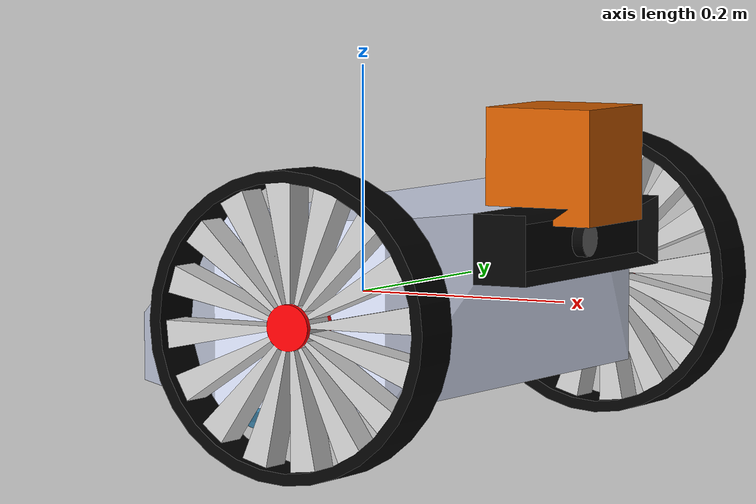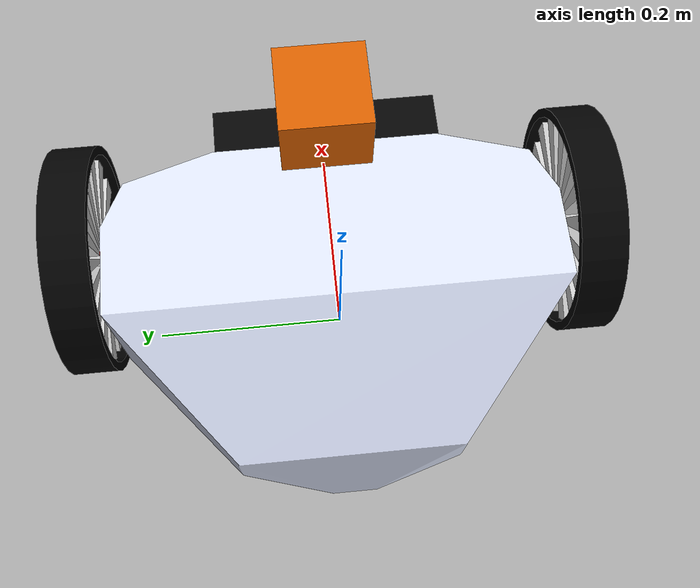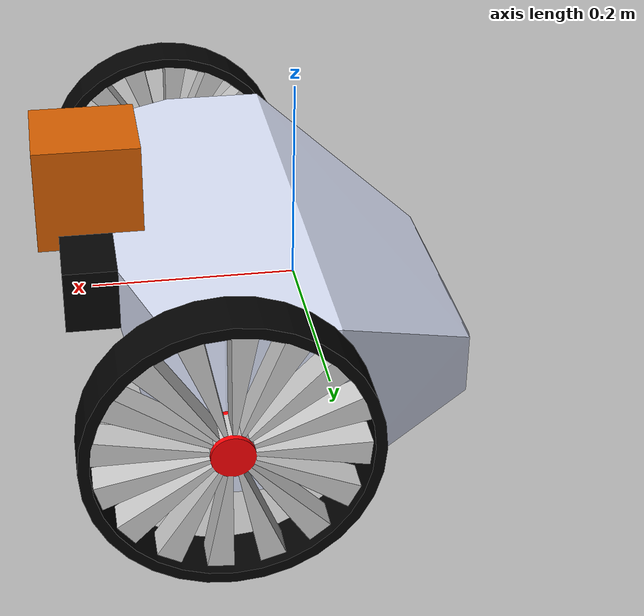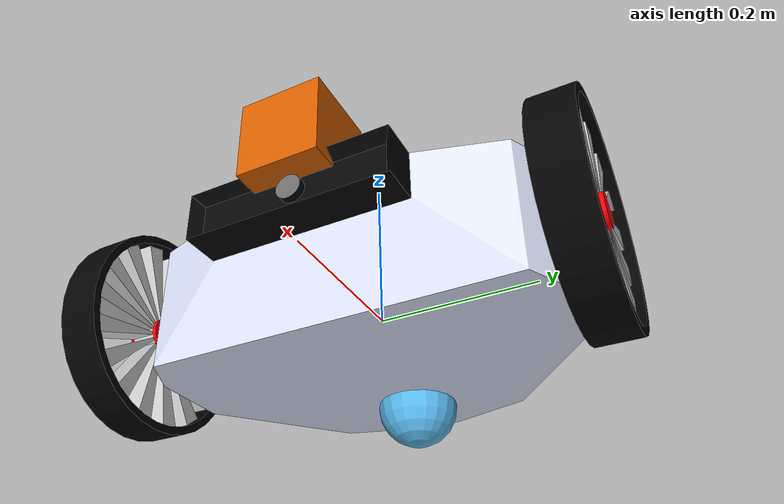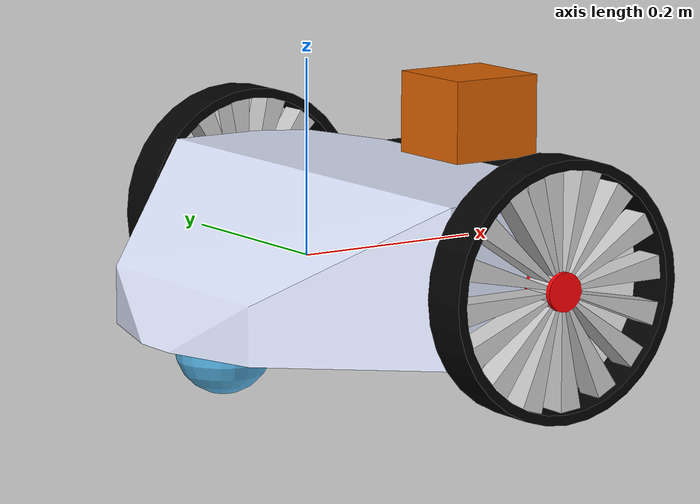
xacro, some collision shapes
<?xml version='1.0'?>

<robot name="my_robot" xmlns:xacro="http://www.ros.org/wiki/xacro">
  <xacro:include filename="$(find my_robot)/urdf/my_robot.gazebo" />
  <link name="robot_footprint"></link>

  <joint name="robot_footprint_joint" type="fixed">
    <origin xyz="0 0 0" rpy="0 0 0" />
    <parent link="robot_footprint"/>
    <child link="chassis" />
  </joint>

  <link name='chassis'>
    <pose>0 0 0 0 0 0</pose>

    <inertial>
      <mass value="5.0"/>
      <origin xyz="0.0 0 0" rpy=" 0 0 0"/>
      <inertia
          ixx="0.1" ixy="0" ixz="0"
          iyy="0.1" iyz="0"
          izz="0.1"
      />
    </inertial>

    <collision name='collision'>
      <origin xyz="0 0 0" rpy=" 0 0 0"/>
      <geometry>
        <box size=".36 .5 .16"/>
      </geometry>
    </collision>

    <visual name='chassis_visual'>
      <origin xyz="0 0 0" rpy=" 0 0 0"/>
      <geometry>
        <mesh filename="package://my_robot/meshes/MattBot.dae" />
      </geometry>
    </visual>

    <collision name='back_caster_collision'>
      <origin xyz="-0.1 0 -0.08" rpy=" 0 0 0"/>
      <geometry>
        <sphere radius="0.05"/>
      </geometry>
    </collision>

    <visual name='back_caster_visual'>
      <origin xyz="-0.1 0 -0.08" rpy=" 0 0 0"/>
      <geometry>
        <sphere radius="0.05"/>
      </geometry>
    </visual>

  </link>

  <link name='left_wheel'>

    <inertial>
      <mass value="2.0"/>
      <origin xyz="0.0 0 0" rpy=" 0 1.5707 1.5707"/>
      <inertia
          ixx="0.1" ixy="0" ixz="0"
          iyy="0.1" iyz="0"
          izz="0.1"
      />
    </inertial>

    <collision name='left_wheel_collision'>
      <origin xyz="0 0 0" rpy="0 1.5707 1.5707"/>
      <geometry>
        <cylinder radius="0.13" length="0.025"/>
      </geometry>
    </collision>

    <visual name='left_wheel_visual'>
      <origin xyz="0 0 0" rpy="0 1.5707 1.5707" />
      <geometry>
        <mesh filename="package://my_robot/meshes/MattWheel.dae" />
      </geometry>
    </visual>
  </link>

  <link name='right_wheel'>
    <inertial>
      <mass value="2.0"/>
      <origin xyz="0.0 0 0" rpy=" 0 1.5707 1.5707"/>
      <inertia
          ixx="0.1" ixy="0" ixz="0"
          iyy="0.1" iyz="0"
          izz="0.1"
      />
    </inertial>

    <collision name='right_wheel_collision'>
      <origin xyz="0 0 0" rpy="0 1.5707 1.5707"/>
      <geometry>
        <cylinder radius="0.13" length="0.025"/>
      </geometry>
    </collision>

    <visual name='right_wheel_visual'>
      <origin xyz="0 0 0" rpy="0 1.5707 1.5707"/>
      <geometry>
        <mesh filename="package://my_robot/meshes/MattWheel.dae" />
      </geometry>
    </visual>
  </link>

  <joint type="continuous" name="left_wheel_hinge">
    <origin xyz="0.1 0.28 0" rpy="0 0 0"/>
    <child link="left_wheel"/>
    <parent link="chassis"/>
    <axis xyz="0 1 0" rpy="0 0 0"/>
    <limit effort="10000" velocity="1000"/>
    <dynamics damping="1.0" friction="1.0"/>
  </joint>

  <joint type="continuous" name="right_wheel_hinge">
    <origin xyz="0.1 -0.28 0" rpy="0 0 0"/>
    <child link="right_wheel"/>
    <parent link="chassis"/>
    <axis xyz="0 1 0" rpy="0 0 0"/>
    <limit effort="10000" velocity="1000"/>
    <dynamics damping="1.0" friction="1.0"/>
  </joint>

  <link name='camera'>
    <inertial>
      <mass value="0.1"/>
      <origin xyz="0 0 0" rpy=" 0 0 0"/>
      <inertia
          ixx="1e-6" ixy="0" ixz="0" iyy="1e-6" iyz="0" izz="1e-6"
      />
    </inertial>

    <collision name='camera_collision'>
      <origin xyz="0 0 0" rpy=" 0 0 0"/>
      <geometry>
        <box size="0.05 0.25 0.06"/>
      </geometry>
    </collision>

    <visual name='camera_visual'>
      <origin xyz="0 0 0" rpy=" 0 0 0"/>
      <geometry>
        <mesh filename="package://my_robot/meshes/MattCam.dae" />
      </geometry>
    </visual>
  </link>

  <joint type="fixed" name="camera_joint">
    <origin xyz="0.218158 0 0.055" rpy="0 0 0"/>
    <child link="camera"/>
    <parent link="chassis"/>
    <axis xyz="0 1 0" rpy="0 0 0"/>
  </joint>

  <link name='hokuyo'>
    <inertial>
      <mass value="1e-5"/>
      <origin xyz="0 0 0" rpy=" 0 0 0"/>
      <inertia
          ixx="1e-6" ixy="0" ixz="0" iyy="1e-6" iyz="0" izz="1e-6"
      />
    </inertial>

    <collision name='hokuyo_collision'>
      <origin xyz="0 0 0" rpy=" 0 0 0"/>
      <geometry>
        <box size="0.1 0.1 0.1"/>
      </geometry>
    </collision>

    <visual name='hokuyo_visual'>
      <origin xyz="0 0 0" rpy=" 0 0 0"/>
      <geometry>
        <mesh filename="package://my_robot/meshes/hokuyo.dae" />
      </geometry>
    </visual>
  </link>

  <joint type="fixed" name="hokuyo_joint">
    <origin xyz="0.2 0 0.12" rpy="0 0 0"/>
    <child link="hokuyo"/>
    <parent link="chassis"/>
    <axis xyz="0 1 0" rpy="0 0 0"/>
  </joint>

</robot>
